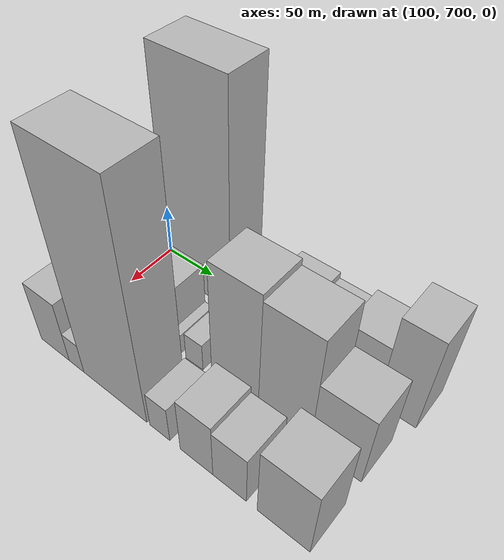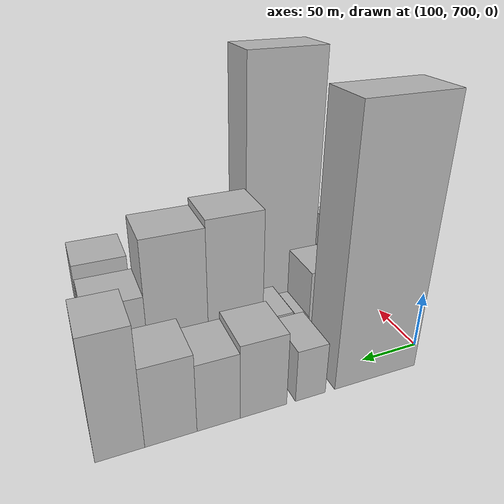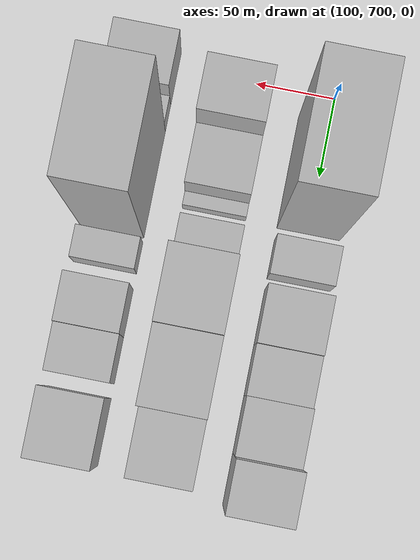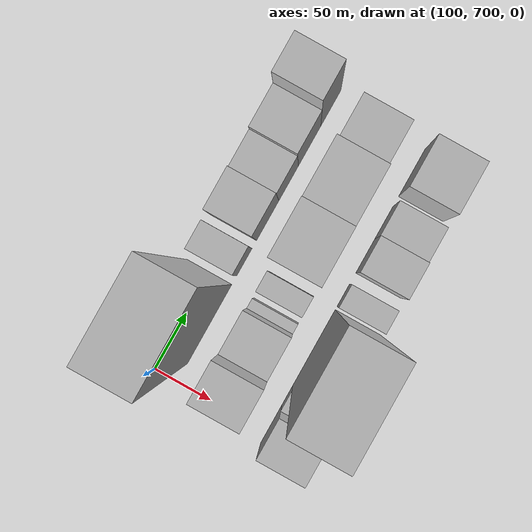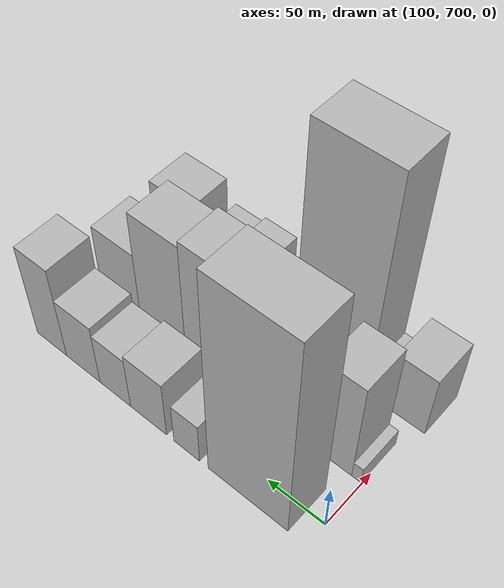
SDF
<sdf version="1.6">
 <world name="default">
  <model name="building_52">
   <static>1</static>
   <pose>100.0000 751.2655 0 0.000000 0.000000 0.000000</pose>
   <link name="link">
    <pose>0 0 108.00 0 0 0</pose>
    <collision name="collision"><geometry><box><size>40.0000 70.9704 216.0000</size></box></geometry></collision>
    <visual name="visual">
     <cast_shadows>0</cast_shadows>
     <geometry><box><size>40.0000 70.9704 216.0000</size></box></geometry>
     <material>
      <script>
       <uri>model://HANNAS_wall/materials/scripts</uri>
       <uri>model://HANNAS_wall/materials/textures</uri>
       <name>vrc/HANNAS_wall</name>
      </script>
     </material>
    </visual>
   </link>
  </model>
  <model name="building_53">
   <static>1</static>
   <pose>100.0000 806.9127 0 0.000000 0.000000 0.000000</pose>
   <link name="link">
    <pose>0 0 22.50 0 0 0</pose>
    <collision name="collision"><geometry><box><size>40.0000 24.3240 45.0000</size></box></geometry></collision>
    <visual name="visual">
     <cast_shadows>0</cast_shadows>
     <geometry><box><size>40.0000 24.3240 45.0000</size></box></geometry>
     <material>
      <script>
       <uri>model://HANNAS_wall/materials/scripts</uri>
       <uri>model://HANNAS_wall/materials/textures</uri>
       <name>vrc/HANNAS_wall</name>
      </script>
     </material>
    </visual>
   </link>
  </model>
  <model name="building_54">
   <static>1</static>
   <pose>100.0000 843.8840 0 0.000000 0.000000 0.000000</pose>
   <link name="link">
    <pose>0 0 31.50 0 0 0</pose>
    <collision name="collision"><geometry><box><size>40.0000 35.6187 63.0000</size></box></geometry></collision>
    <visual name="visual">
     <cast_shadows>0</cast_shadows>
     <geometry><box><size>40.0000 35.6187 63.0000</size></box></geometry>
     <material>
      <script>
       <uri>model://HANNAS_wall/materials/scripts</uri>
       <uri>model://HANNAS_wall/materials/textures</uri>
       <name>vrc/HANNAS_wall</name>
      </script>
     </material>
    </visual>
   </link>
  </model>
  <model name="building_55">
   <static>1</static>
   <pose>100.0000 877.3269 0 0.000000 0.000000 0.000000</pose>
   <link name="link">
    <pose>0 0 28.50 0 0 0</pose>
    <collision name="collision"><geometry><box><size>40.0000 31.2671 57.0000</size></box></geometry></collision>
    <visual name="visual">
     <cast_shadows>0</cast_shadows>
     <geometry><box><size>40.0000 31.2671 57.0000</size></box></geometry>
     <material>
      <script>
       <uri>model://HANNAS_wall/materials/scripts</uri>
       <uri>model://HANNAS_wall/materials/textures</uri>
       <name>vrc/HANNAS_wall</name>
      </script>
     </material>
    </visual>
   </link>
  </model>
  <model name="building_56">
   <static>1</static>
   <pose>100.0000 910.8235 0 0.000000 0.000000 0.000000</pose>
   <link name="link">
    <pose>0 0 33.00 0 0 0</pose>
    <collision name="collision"><geometry><box><size>40.0000 35.7262 66.0000</size></box></geometry></collision>
    <visual name="visual">
     <cast_shadows>0</cast_shadows>
     <geometry><box><size>40.0000 35.7262 66.0000</size></box></geometry>
     <material>
      <script>
       <uri>model://HANNAS_wall/materials/scripts</uri>
       <uri>model://HANNAS_wall/materials/textures</uri>
       <name>vrc/HANNAS_wall</name>
      </script>
     </material>
    </visual>
   </link>
  </model>
  <model name="building_57">
   <static>1</static>
   <pose>100.0000 944.7487 0 0.000000 0.000000 0.000000</pose>
   <link name="link">
    <pose>0 0 49.50 0 0 0</pose>
    <collision name="collision"><geometry><box><size>40.0000 32.1241 99.0000</size></box></geometry></collision>
    <visual name="visual">
     <cast_shadows>0</cast_shadows>
     <geometry><box><size>40.0000 32.1241 99.0000</size></box></geometry>
     <material>
      <script>
       <uri>model://HANNAS_wall/materials/scripts</uri>
       <uri>model://HANNAS_wall/materials/textures</uri>
       <name>vrc/HANNAS_wall</name>
      </script>
     </material>
    </visual>
   </link>
  </model>
  <model name="building_108">
   <static>1</static>
   <pose>160.0000 704.7735 0 0.000000 0.000000 0.000000</pose>
   <link name="link">
    <pose>0 0 9.00 0 0 0</pose>
    <collision name="collision"><geometry><box><size>40.0000 7.9365 18.0000</size></box></geometry></collision>
    <visual name="visual">
     <cast_shadows>0</cast_shadows>
     <geometry><box><size>40.0000 7.9365 18.0000</size></box></geometry>
     <material>
      <script>
       <uri>model://HANNAS_wall/materials/scripts</uri>
       <uri>model://HANNAS_wall/materials/textures</uri>
       <name>vrc/HANNAS_wall</name>
      </script>
     </material>
    </visual>
   </link>
  </model>
  <model name="building_109">
   <static>1</static>
   <pose>160.0000 725.2594 0 0.000000 0.000000 0.000000</pose>
   <link name="link">
    <pose>0 0 54.00 0 0 0</pose>
    <collision name="collision"><geometry><box><size>40.0000 33.0354 108.0000</size></box></geometry></collision>
    <visual name="visual">
     <cast_shadows>0</cast_shadows>
     <geometry><box><size>40.0000 33.0354 108.0000</size></box></geometry>
     <material>
      <script>
       <uri>model://HANNAS_wall/materials/scripts</uri>
       <uri>model://HANNAS_wall/materials/textures</uri>
       <name>vrc/HANNAS_wall</name>
      </script>
     </material>
    </visual>
   </link>
  </model>
  <model name="building_110">
   <static>1</static>
   <pose>160.0000 759.6348 0 0.000000 0.000000 0.000000</pose>
   <link name="link">
    <pose>0 0 31.50 0 0 0</pose>
    <collision name="collision"><geometry><box><size>40.0000 35.7154 63.0000</size></box></geometry></collision>
    <visual name="visual">
     <cast_shadows>0</cast_shadows>
     <geometry><box><size>40.0000 35.7154 63.0000</size></box></geometry>
     <material>
      <script>
       <uri>model://HANNAS_wall/materials/scripts</uri>
       <uri>model://HANNAS_wall/materials/textures</uri>
       <name>vrc/HANNAS_wall</name>
      </script>
     </material>
    </visual>
   </link>
  </model>
  <model name="building_111">
   <static>1</static>
   <pose>160.0000 781.7776 0 0.000000 0.000000 0.000000</pose>
   <link name="link">
    <pose>0 0 10.50 0 0 0</pose>
    <collision name="collision"><geometry><box><size>40.0000 8.5702 21.0000</size></box></geometry></collision>
    <visual name="visual">
     <cast_shadows>0</cast_shadows>
     <geometry><box><size>40.0000 8.5702 21.0000</size></box></geometry>
     <material>
      <script>
       <uri>model://HANNAS_wall/materials/scripts</uri>
       <uri>model://HANNAS_wall/materials/textures</uri>
       <name>vrc/HANNAS_wall</name>
      </script>
     </material>
    </visual>
   </link>
  </model>
  <model name="building_112">
   <static>1</static>
   <pose>160.0000 800.9987 0 0.000000 0.000000 0.000000</pose>
   <link name="link">
    <pose>0 0 15.00 0 0 0</pose>
    <collision name="collision"><geometry><box><size>40.0000 17.8720 30.0000</size></box></geometry></collision>
    <visual name="visual">
     <cast_shadows>0</cast_shadows>
     <geometry><box><size>40.0000 17.8720 30.0000</size></box></geometry>
     <material>
      <script>
       <uri>model://HANNAS_wall/materials/scripts</uri>
       <uri>model://HANNAS_wall/materials/textures</uri>
       <name>vrc/HANNAS_wall</name>
      </script>
     </material>
    </visual>
   </link>
  </model>
  <model name="building_113">
   <static>1</static>
   <pose>160.0000 841.4218 0 0.000000 0.000000 0.000000</pose>
   <link name="link">
    <pose>0 0 63.00 0 0 0</pose>
    <collision name="collision"><geometry><box><size>40.0000 44.9743 126.0000</size></box></geometry></collision>
    <visual name="visual">
     <cast_shadows>0</cast_shadows>
     <geometry><box><size>40.0000 44.9743 126.0000</size></box></geometry>
     <material>
      <script>
       <uri>model://HANNAS_wall/materials/scripts</uri>
       <uri>model://HANNAS_wall/materials/textures</uri>
       <name>vrc/HANNAS_wall</name>
      </script>
     </material>
    </visual>
   </link>
  </model>
  <model name="building_114">
   <static>1</static>
   <pose>160.0000 887.2286 0 0.000000 0.000000 0.000000</pose>
   <link name="link">
    <pose>0 0 60.00 0 0 0</pose>
    <collision name="collision"><geometry><box><size>40.0000 46.6394 120.0000</size></box></geometry></collision>
    <visual name="visual">
     <cast_shadows>0</cast_shadows>
     <geometry><box><size>40.0000 46.6394 120.0000</size></box></geometry>
     <material>
      <script>
       <uri>model://HANNAS_wall/materials/scripts</uri>
       <uri>model://HANNAS_wall/materials/textures</uri>
       <name>vrc/HANNAS_wall</name>
      </script>
     </material>
    </visual>
   </link>
  </model>
  <model name="building_115">
   <static>1</static>
   <pose>160.0000 931.6142 0 0.000000 0.000000 0.000000</pose>
   <link name="link">
    <pose>0 0 37.50 0 0 0</pose>
    <collision name="collision"><geometry><box><size>40.0000 42.1318 75.0000</size></box></geometry></collision>
    <visual name="visual">
     <cast_shadows>0</cast_shadows>
     <geometry><box><size>40.0000 42.1318 75.0000</size></box></geometry>
     <material>
      <script>
       <uri>model://HANNAS_wall/materials/scripts</uri>
       <uri>model://HANNAS_wall/materials/textures</uri>
       <name>vrc/HANNAS_wall</name>
      </script>
     </material>
    </visual>
   </link>
  </model>
  <model name="building_164">
   <static>1</static>
   <pose>220.0000 707.0521 0 0.000000 0.000000 0.000000</pose>
   <link name="link">
    <pose>0 0 33.00 0 0 0</pose>
    <collision name="collision"><geometry><box><size>40.0000 33.8267 66.0000</size></box></geometry></collision>
    <visual name="visual">
     <cast_shadows>0</cast_shadows>
     <geometry><box><size>40.0000 33.8267 66.0000</size></box></geometry>
     <material>
      <script>
       <uri>model://HANNAS_wall/materials/scripts</uri>
       <uri>model://HANNAS_wall/materials/textures</uri>
       <name>vrc/HANNAS_wall</name>
      </script>
     </material>
    </visual>
   </link>
  </model>
  <model name="building_165">
   <static>1</static>
   <pose>220.0000 732.4804 0 0.000000 0.000000 0.000000</pose>
   <link name="link">
    <pose>0 0 16.50 0 0 0</pose>
    <collision name="collision"><geometry><box><size>40.0000 17.0299 33.0000</size></box></geometry></collision>
    <visual name="visual">
     <cast_shadows>0</cast_shadows>
     <geometry><box><size>40.0000 17.0299 33.0000</size></box></geometry>
     <material>
      <script>
       <uri>model://HANNAS_wall/materials/scripts</uri>
       <uri>model://HANNAS_wall/materials/textures</uri>
       <name>vrc/HANNAS_wall</name>
      </script>
     </material>
    </visual>
   </link>
  </model>
  <model name="building_166">
   <static>1</static>
   <pose>220.0000 775.0628 0 0.000000 0.000000 0.000000</pose>
   <link name="link">
    <pose>0 0 112.50 0 0 0</pose>
    <collision name="collision"><geometry><box><size>40.0000 68.1348 225.0000</size></box></geometry></collision>
    <visual name="visual">
     <cast_shadows>0</cast_shadows>
     <geometry><box><size>40.0000 68.1348 225.0000</size></box></geometry>
     <material>
      <script>
       <uri>model://HANNAS_wall/materials/scripts</uri>
       <uri>model://HANNAS_wall/materials/textures</uri>
       <name>vrc/HANNAS_wall</name>
      </script>
     </material>
    </visual>
   </link>
  </model>
  <model name="building_167">
   <static>1</static>
   <pose>220.0000 822.0262 0 0.000000 0.000000 0.000000</pose>
   <link name="link">
    <pose>0 0 19.50 0 0 0</pose>
    <collision name="collision"><geometry><box><size>40.0000 19.7921 39.0000</size></box></geometry></collision>
    <visual name="visual">
     <cast_shadows>0</cast_shadows>
     <geometry><box><size>40.0000 19.7921 39.0000</size></box></geometry>
     <material>
      <script>
       <uri>model://HANNAS_wall/materials/scripts</uri>
       <uri>model://HANNAS_wall/materials/textures</uri>
       <name>vrc/HANNAS_wall</name>
      </script>
     </material>
    </visual>
   </link>
  </model>
  <model name="building_168">
   <static>1</static>
   <pose>220.0000 857.0688 0 0.000000 0.000000 0.000000</pose>
   <link name="link">
    <pose>0 0 30.00 0 0 0</pose>
    <collision name="collision"><geometry><box><size>40.0000 30.2931 60.0000</size></box></geometry></collision>
    <visual name="visual">
     <cast_shadows>0</cast_shadows>
     <geometry><box><size>40.0000 30.2931 60.0000</size></box></geometry>
     <material>
      <script>
       <uri>model://HANNAS_wall/materials/scripts</uri>
       <uri>model://HANNAS_wall/materials/textures</uri>
       <name>vrc/HANNAS_wall</name>
      </script>
     </material>
    </visual>
   </link>
  </model>
  <model name="building_169">
   <static>1</static>
   <pose>220.0000 886.8657 0 0.000000 0.000000 0.000000</pose>
   <link name="link">
    <pose>0 0 27.00 0 0 0</pose>
    <collision name="collision"><geometry><box><size>40.0000 29.3008 54.0000</size></box></geometry></collision>
    <visual name="visual">
     <cast_shadows>0</cast_shadows>
     <geometry><box><size>40.0000 29.3008 54.0000</size></box></geometry>
     <material>
      <script>
       <uri>model://HANNAS_wall/materials/scripts</uri>
       <uri>model://HANNAS_wall/materials/textures</uri>
       <name>vrc/HANNAS_wall</name>
      </script>
     </material>
    </visual>
   </link>
  </model>
  <model name="building_170">
   <static>1</static>
   <pose>220.0000 931.6974 0 0.000000 0.000000 0.000000</pose>
   <link name="link">
    <pose>0 0 37.50 0 0 0</pose>
    <collision name="collision"><geometry><box><size>40.0000 42.3626 75.0000</size></box></geometry></collision>
    <visual name="visual">
     <cast_shadows>0</cast_shadows>
     <geometry><box><size>40.0000 42.3626 75.0000</size></box></geometry>
     <material>
      <script>
       <uri>model://HANNAS_wall/materials/scripts</uri>
       <uri>model://HANNAS_wall/materials/textures</uri>
       <name>vrc/HANNAS_wall</name>
      </script>
     </material>
    </visual>
   </link>
  </model>
 </world>
</sdf>
